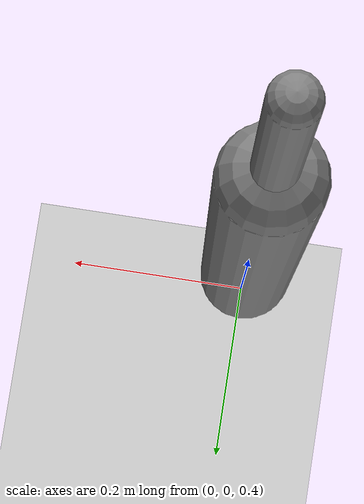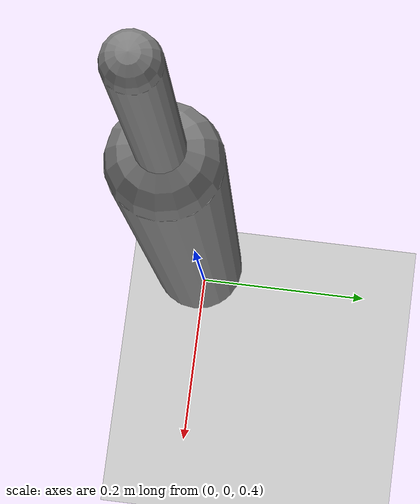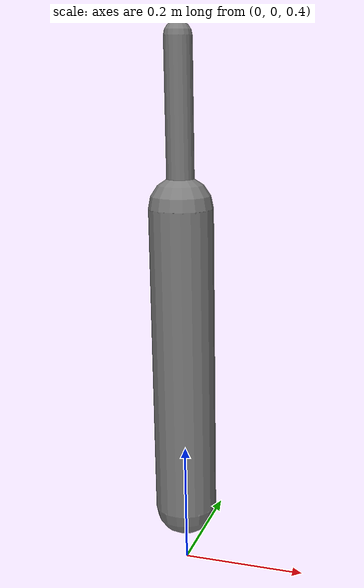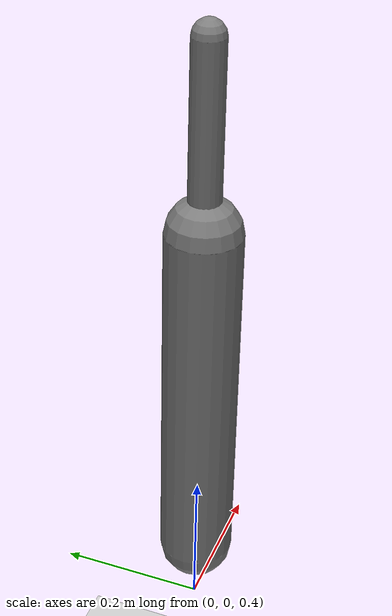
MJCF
<?xml version='1.0' encoding='UTF-8'?>
<mujoco model="RobotModel">
  <option gravity="0 0 -9.81" timestep="0.002" solver="CG" iterations="500" integrator="Euler"/>
  <worldbody>
    <geom name="Floor" type="plane" size="10 10 0.1" pos="0 0 0" rgba="0.8 0.8 0.8 1"/>
    <body name="Limb0" pos="0 0 0.5">
      <geom type="capsule" fromto="0 0 0 0 0 0.5" size="0.05" density="1000" contype="1" conaffinity="1"/>
      <body name="Limb0_c9e1f346" pos="0 0 0.5">
        <geom type="capsule" fromto="0 0 0 0 0 0.25070633321079583" size="0.02122629116487221" density="800" contype="1" conaffinity="1"/>
        <joint name="Joint_Limb0_Limb0_c9e1f346_0" type="hinge" axis="1 0 0" range="-60 60"/>
      </body>
    </body>
  </worldbody>
  <actuator>
    <position name="position_Actuator_Joint_Limb0_Limb0_c9e1f346_0" joint="Joint_Limb0_Limb0_c9e1f346_0" gear="1.0"/>
  </actuator>
</mujoco>
